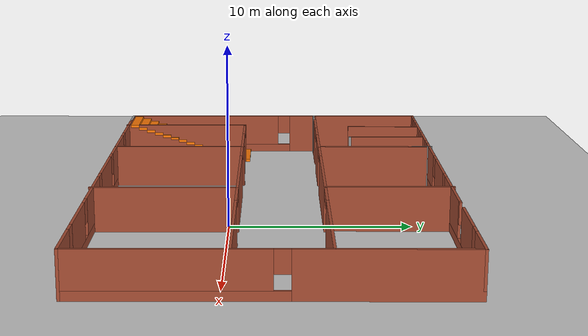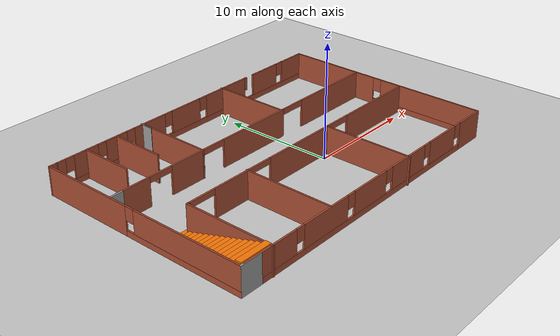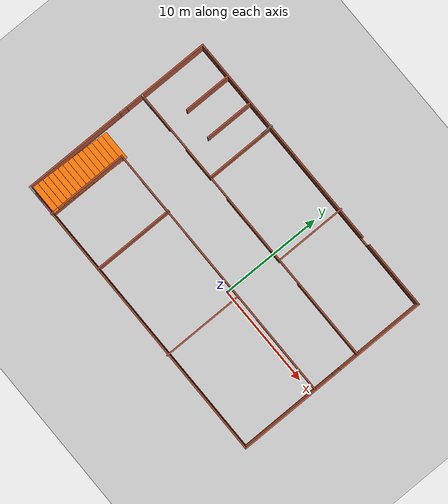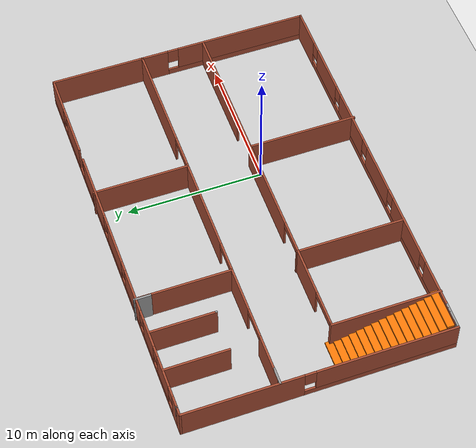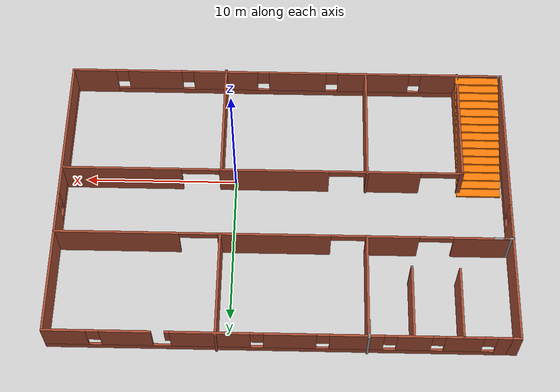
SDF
<sdf version="1.7">
 <world name="default">
  <light name="sun" type="directional">
   <pose>0 0 10 0 -0 0</pose>
   <diffuse>0.8 0.8 0.8 1</diffuse>
   <specular>0.2 0.2 0.2 1</specular>
   <attenuation>
    <range>1000</range>
    <constant>0.9</constant>
    <linear>0.01</linear>
    <quadratic>0.001</quadratic>
   </attenuation>
   <direction>-0.5 0.1 -0.9</direction>
   <spot><inner_angle>0</inner_angle><outer_angle>0</outer_angle><falloff>0</falloff></spot>
  </light>
  <model name="ground_plane">
   <static>1</static>
   <link name="link">
    <collision name="collision">
     <geometry><plane><normal>0 0 1</normal><size>100 100</size></plane></geometry>
     <surface>
      <contact><collide_bitmask>65535</collide_bitmask></contact>
      <friction><ode><mu>100</mu><mu2>50</mu2></ode></friction>
     </surface>
    </collision>
    <visual name="visual">
     <cast_shadows>0</cast_shadows>
     <geometry><plane><normal>0 0 1</normal><size>100 100</size></plane></geometry>
     <material>
      <script><uri>file://media/materials/scripts/gazebo.material</uri><name>Gazebo/Grey</name></script>
     </material>
    </visual>
   </link>
  </model>
  <gravity>0 0 -9.8</gravity>
  <magnetic_field>6e-06 2.3e-05 -4.2e-05</magnetic_field>
  <atmosphere type="adiabatic"/>
  <physics type="ode">
   <max_step_size>0.001</max_step_size>
   <real_time_factor>1</real_time_factor>
   <real_time_update_rate>1000</real_time_update_rate>
  </physics>
  <scene><ambient>0.4 0.4 0.4 1</ambient><background>0.7 0.7 0.7 1</background><shadows>1</shadows></scene>
  <spherical_coordinates>
   <surface_model>EARTH_WGS84</surface_model>
   <latitude_deg>0</latitude_deg>
   <longitude_deg>0</longitude_deg>
   <elevation>0</elevation>
   <heading_deg>0</heading_deg>
  </spherical_coordinates>
  <model name="zeal_world">
   <pose>-3.26497 2.3618 0 0 -0 0</pose>
   <link name="Stairs_0">
    <visual name="Stairs_0_Visual_0">
     <pose>-12.9383 -1.79915 0.083333 0 -0 0</pose>
     <geometry><box><size>2.91044 0.530513 0.166667</size></box></geometry>
     <material>
      <script><uri>file://media/materials/scripts/gazebo.material</uri><name>Gazebo/Grey</name></script>
      <ambient>0.996078 0.47451 0.0196078 1</ambient>
     </material>
     <meta><layer>0</layer></meta>
    </visual>
    <collision name="Stairs_0_Collision_0">
     <geometry><box><size>2.91044 0.530513 0.166667</size></box></geometry>
     <pose>-12.9383 -1.79915 0.083333 0 -0 0</pose>
    </collision>
    <visual name="Stairs_0_Visual_1">
     <pose>-12.9383 -2.32966 0.25 0 -0 0</pose>
     <geometry><box><size>2.91044 0.530513 0.166667</size></box></geometry>
     <material>
      <script><uri>file://media/materials/scripts/gazebo.material</uri><name>Gazebo/Grey</name></script>
      <ambient>0.996078 0.47451 0.0196078 1</ambient>
     </material>
     <meta><layer>0</layer></meta>
    </visual>
    <collision name="Stairs_0_Collision_1">
     <geometry><box><size>2.91044 0.530513 0.166667</size></box></geometry>
     <pose>-12.9383 -2.32966 0.25 0 -0 0</pose>
    </collision>
    <visual name="Stairs_0_Visual_2">
     <pose>-12.9383 -2.86017 0.416667 0 -0 0</pose>
     <geometry><box><size>2.91044 0.530513 0.166667</size></box></geometry>
     <material>
      <script><uri>file://media/materials/scripts/gazebo.material</uri><name>Gazebo/Grey</name></script>
      <ambient>0.996078 0.47451 0.0196078 1</ambient>
     </material>
     <meta><layer>0</layer></meta>
    </visual>
    <collision name="Stairs_0_Collision_2">
     <geometry><box><size>2.91044 0.530513 0.166667</size></box></geometry>
     <pose>-12.9383 -2.86017 0.416667 0 -0 0</pose>
    </collision>
    <visual name="Stairs_0_Visual_3">
     <pose>-12.9383 -3.39069 0.583333 0 -0 0</pose>
     <geometry><box><size>2.91044 0.530513 0.166667</size></box></geometry>
     <material>
      <script><uri>file://media/materials/scripts/gazebo.material</uri><name>Gazebo/Grey</name></script>
      <ambient>0.996078 0.47451 0.0196078 1</ambient>
     </material>
     <meta><layer>0</layer></meta>
    </visual>
    <collision name="Stairs_0_Collision_3">
     <geometry><box><size>2.91044 0.530513 0.166667</size></box></geometry>
     <pose>-12.9383 -3.39069 0.583333 0 -0 0</pose>
    </collision>
    <visual name="Stairs_0_Visual_4">
     <pose>-12.9383 -3.9212 0.75 0 -0 0</pose>
     <geometry><box><size>2.91044 0.530513 0.166667</size></box></geometry>
     <material>
      <script><uri>file://media/materials/scripts/gazebo.material</uri><name>Gazebo/Grey</name></script>
      <ambient>0.996078 0.47451 0.0196078 1</ambient>
     </material>
     <meta><layer>0</layer></meta>
    </visual>
    <collision name="Stairs_0_Collision_4">
     <geometry><box><size>2.91044 0.530513 0.166667</size></box></geometry>
     <pose>-12.9383 -3.9212 0.75 0 -0 0</pose>
    </collision>
    <visual name="Stairs_0_Visual_5">
     <pose>-12.9383 -4.45171 0.916667 0 -0 0</pose>
     <geometry><box><size>2.91044 0.530513 0.166667</size></box></geometry>
     <material>
      <script><uri>file://media/materials/scripts/gazebo.material</uri><name>Gazebo/Grey</name></script>
      <ambient>0.996078 0.47451 0.0196078 1</ambient>
     </material>
     <meta><layer>0</layer></meta>
    </visual>
    <collision name="Stairs_0_Collision_5">
     <geometry><box><size>2.91044 0.530513 0.166667</size></box></geometry>
     <pose>-12.9383 -4.45171 0.916667 0 -0 0</pose>
    </collision>
    <visual name="Stairs_0_Visual_6">
     <pose>-12.9383 -4.98222 1.08333 0 -0 0</pose>
     <geometry><box><size>2.91044 0.530513 0.166667</size></box></geometry>
     <material>
      <script><uri>file://media/materials/scripts/gazebo.material</uri><name>Gazebo/Grey</name></script>
      <ambient>0.996078 0.47451 0.0196078 1</ambient>
     </material>
     <meta><layer>0</layer></meta>
    </visual>
    <collision name="Stairs_0_Collision_6">
     <geometry><box><size>2.91044 0.530513 0.166667</size></box></geometry>
     <pose>-12.9383 -4.98222 1.08333 0 -0 0</pose>
    </collision>
    <visual name="Stairs_0_Visual_7">
     <pose>-12.9383 -5.51274 1.25 0 -0 0</pose>
     <geometry><box><size>2.91044 0.530513 0.166667</size></box></geometry>
     <material>
      <script><uri>file://media/materials/scripts/gazebo.material</uri><name>Gazebo/Grey</name></script>
      <ambient>0.996078 0.47451 0.0196078 1</ambient>
     </material>
     <meta><layer>0</layer></meta>
    </visual>
    <collision name="Stairs_0_Collision_7">
     <geometry><box><size>2.91044 0.530513 0.166667</size></box></geometry>
     <pose>-12.9383 -5.51274 1.25 0 -0 0</pose>
    </collision>
    <visual name="Stairs_0_Visual_8">
     <pose>-12.9383 -6.04325 1.41667 0 -0 0</pose>
     <geometry><box><size>2.91044 0.530513 0.166667</size></box></geometry>
     <material>
      <script><uri>file://media/materials/scripts/gazebo.material</uri><name>Gazebo/Grey</name></script>
      <ambient>0.996078 0.47451 0.0196078 1</ambient>
     </material>
     <meta><layer>0</layer></meta>
    </visual>
    <collision name="Stairs_0_Collision_8">
     <geometry><box><size>2.91044 0.530513 0.166667</size></box></geometry>
     <pose>-12.9383 -6.04325 1.41667 0 -0 0</pose>
    </collision>
    <visual name="Stairs_0_Visual_9">
     <pose>-12.9383 -6.57376 1.58333 0 -0 0</pose>
     <geometry><box><size>2.91044 0.530513 0.166667</size></box></geometry>
     <material>
      <script><uri>file://media/materials/scripts/gazebo.material</uri><name>Gazebo/Grey</name></script>
      <ambient>0.996078 0.47451 0.0196078 1</ambient>
     </material>
     <meta><layer>0</layer></meta>
    </visual>
    <collision name="Stairs_0_Collision_9">
     <geometry><box><size>2.91044 0.530513 0.166667</size></box></geometry>
     <pose>-12.9383 -6.57376 1.58333 0 -0 0</pose>
    </collision>
    <visual name="Stairs_0_Visual_10">
     <pose>-12.9383 -7.10428 1.75 0 -0 0</pose>
     <geometry><box><size>2.91044 0.530513 0.166667</size></box></geometry>
     <material>
      <script><uri>file://media/materials/scripts/gazebo.material</uri><name>Gazebo/Grey</name></script>
      <ambient>0.996078 0.47451 0.0196078 1</ambient>
     </material>
     <meta><layer>0</layer></meta>
    </visual>
    <collision name="Stairs_0_Collision_10">
     <geometry><box><size>2.91044 0.530513 0.166667</size></box></geometry>
     <pose>-12.9383 -7.10428 1.75 0 -0 0</pose>
    </collision>
    <visual name="Stairs_0_Visual_11">
     <pose>-12.9383 -7.63479 1.91667 0 -0 0</pose>
     <geometry><box><size>2.91044 0.530513 0.166667</size></box></geometry>
     <material>
      <script><uri>file://media/materials/scripts/gazebo.material</uri><name>Gazebo/Grey</name></script>
      <ambient>0.996078 0.47451 0.0196078 1</ambient>
     </material>
     <meta><layer>0</layer></meta>
    </visual>
    <collision name="Stairs_0_Collision_11">
     <geometry><box><size>2.91044 0.530513 0.166667</size></box></geometry>
     <pose>-12.9383 -7.63479 1.91667 0 -0 0</pose>
    </collision>
    <visual name="Stairs_0_Visual_12">
     <pose>-12.9383 -8.1653 2.08333 0 -0 0</pose>
     <geometry><box><size>2.91044 0.530513 0.166667</size></box></geometry>
     <material>
      <script><uri>file://media/materials/scripts/gazebo.material</uri><name>Gazebo/Grey</name></script>
      <ambient>0.996078 0.47451 0.0196078 1</ambient>
     </material>
     <meta><layer>0</layer></meta>
    </visual>
    <collision name="Stairs_0_Collision_12">
     <geometry><box><size>2.91044 0.530513 0.166667</size></box></geometry>
     <pose>-12.9383 -8.1653 2.08333 0 -0 0</pose>
    </collision>
    <visual name="Stairs_0_Visual_13">
     <pose>-12.9383 -8.69581 2.25 0 -0 0</pose>
     <geometry><box><size>2.91044 0.530513 0.166667</size></box></geometry>
     <material>
      <script><uri>file://media/materials/scripts/gazebo.material</uri><name>Gazebo/Grey</name></script>
      <ambient>0.996078 0.47451 0.0196078 1</ambient>
     </material>
     <meta><layer>0</layer></meta>
    </visual>
    <collision name="Stairs_0_Collision_13">
     <geometry><box><size>2.91044 0.530513 0.166667</size></box></geometry>
     <pose>-12.9383 -8.69581 2.25 0 -0 0</pose>
    </collision>
    <visual name="Stairs_0_Visual_14">
     <pose>-12.9383 -9.22633 2.41667 0 -0 0</pose>
     <geometry><box><size>2.91044 0.530513 0.166667</size></box></geometry>
     <material>
      <script><uri>file://media/materials/scripts/gazebo.material</uri><name>Gazebo/Grey</name></script>
      <ambient>0.996078 0.47451 0.0196078 1</ambient>
     </material>
     <meta><layer>0</layer></meta>
    </visual>
    <collision name="Stairs_0_Collision_14">
     <geometry><box><size>2.91044 0.530513 0.166667</size></box></geometry>
     <pose>-12.9383 -9.22633 2.41667 0 -0 0</pose>
    </collision>
   </link>
   <link name="Wall_13">
    <pose>0.3 9.68243 0 0 -0 0</pose>
    <visual name="Wall_13_Visual_0">
     <pose>-13.9256 0 1.25 0 -0 0</pose>
     <geometry><box><size>0.8988 0.15 2.5</size></box></geometry>
     <material>
      <script><uri>file://media/materials/scripts/gazebo.material</uri><name>Gazebo/Bricks</name></script>
      <ambient>1 1 1 1</ambient>
     </material>
     <meta><layer>0</layer></meta>
    </visual>
    <collision name="Wall_13_Collision_0">
     <geometry><box><size>0.8988 0.15 2.5</size></box></geometry>
     <pose>-13.9256 0 1.25 0 -0 0</pose>
    </collision>
    <visual name="Wall_13_Visual_1">
     <pose>0.4494 0 0.25 0 -0 0</pose>
     <geometry><box><size>27.8512 0.15 0.5</size></box></geometry>
     <material>
      <script><uri>file://media/materials/scripts/gazebo.material</uri><name>Gazebo/Bricks</name></script>
      <ambient>1 1 1 1</ambient>
     </material>
     <meta><layer>0</layer></meta>
    </visual>
    <collision name="Wall_13_Collision_1">
     <geometry><box><size>27.8512 0.15 0.5</size></box></geometry>
     <pose>0.4494 0 0.25 0 -0 0</pose>
    </collision>
    <visual name="Wall_13_Visual_2">
     <pose>-11.5072 0 1.5 0 -0 0</pose>
     <geometry><box><size>2.33792 0.15 2</size></box></geometry>
     <material>
      <script><uri>file://media/materials/scripts/gazebo.material</uri><name>Gazebo/Bricks</name></script>
      <ambient>1 1 1 1</ambient>
     </material>
     <meta><layer>0</layer></meta>
    </visual>
    <collision name="Wall_13_Collision_2">
     <geometry><box><size>2.33792 0.15 2</size></box></geometry>
     <pose>-11.5072 0 1.5 0 -0 0</pose>
    </collision>
    <visual name="Wall_13_Visual_3">
     <pose>-8.46161 0 1.5 0 -0 0</pose>
     <geometry><box><size>2.15334 0.15 2</size></box></geometry>
     <material>
      <script><uri>file://media/materials/scripts/gazebo.material</uri><name>Gazebo/Bricks</name></script>
      <ambient>1 1 1 1</ambient>
     </material>
     <meta><layer>0</layer></meta>
    </visual>
    <collision name="Wall_13_Collision_3">
     <geometry><box><size>2.15334 0.15 2</size></box></geometry>
     <pose>-8.46161 0 1.5 0 -0 0</pose>
    </collision>
    <visual name="Wall_13_Visual_4">
     <pose>-4.92376 0 1.5 0 -0 0</pose>
     <geometry><box><size>3.32237 0.15 2</size></box></geometry>
     <material>
      <script><uri>file://media/materials/scripts/gazebo.material</uri><name>Gazebo/Bricks</name></script>
      <ambient>1 1 1 1</ambient>
     </material>
     <meta><layer>0</layer></meta>
    </visual>
    <collision name="Wall_13_Collision_4">
     <geometry><box><size>3.32237 0.15 2</size></box></geometry>
     <pose>-4.92376 0 1.5 0 -0 0</pose>
    </collision>
    <visual name="Wall_13_Visual_5">
     <pose>-0.832152 0 1.5 0 -0 0</pose>
     <geometry><box><size>3.26084 0.15 2</size></box></geometry>
     <material>
      <script><uri>file://media/materials/scripts/gazebo.material</uri><name>Gazebo/Bricks</name></script>
      <ambient>1 1 1 1</ambient>
     </material>
     <meta><layer>0</layer></meta>
    </visual>
    <collision name="Wall_13_Collision_5">
     <geometry><box><size>3.26084 0.15 2</size></box></geometry>
     <pose>-0.832152 0 1.5 0 -0 0</pose>
    </collision>
    <visual name="Wall_13_Visual_6">
     <pose>4.05931 0 1.5 0 -0 0</pose>
     <geometry><box><size>4.92209 0.15 2</size></box></geometry>
     <material>
      <script><uri>file://media/materials/scripts/gazebo.material</uri><name>Gazebo/Bricks</name></script>
      <ambient>1 1 1 1</ambient>
     </material>
     <meta><layer>0</layer></meta>
    </visual>
    <collision name="Wall_13_Collision_6">
     <geometry><box><size>4.92209 0.15 2</size></box></geometry>
     <pose>4.05931 0 1.5 0 -0 0</pose>
    </collision>
    <visual name="Wall_13_Visual_7">
     <pose>9.22766 0 1.5 0 -0 0</pose>
     <geometry><box><size>3.19931 0.15 2</size></box></geometry>
     <material>
      <script><uri>file://media/materials/scripts/gazebo.material</uri><name>Gazebo/Bricks</name></script>
      <ambient>1 1 1 1</ambient>
     </material>
     <meta><layer>0</layer></meta>
    </visual>
    <collision name="Wall_13_Collision_7">
     <geometry><box><size>3.19931 0.15 2</size></box></geometry>
     <pose>9.22766 0 1.5 0 -0 0</pose>
    </collision>
    <visual name="Wall_13_Visual_8">
     <pose>13.0012 0 1.5 0 -0 0</pose>
     <geometry><box><size>2.74769 0.15 2</size></box></geometry>
     <material>
      <script><uri>file://media/materials/scripts/gazebo.material</uri><name>Gazebo/Bricks</name></script>
      <ambient>1 1 1 1</ambient>
     </material>
     <meta><layer>0</layer></meta>
    </visual>
    <collision name="Wall_13_Collision_8">
     <geometry><box><size>2.74769 0.15 2</size></box></geometry>
     <pose>13.0012 0 1.5 0 -0 0</pose>
    </collision>
    <visual name="Wall_13_Visual_9">
     <pose>-13.0762 0 1.9 0 -0 0</pose>
     <geometry><box><size>0.8 0.15 1.2</size></box></geometry>
     <material>
      <script><uri>file://media/materials/scripts/gazebo.material</uri><name>Gazebo/Bricks</name></script>
      <ambient>1 1 1 1</ambient>
     </material>
     <meta><layer>0</layer></meta>
    </visual>
    <collision name="Wall_13_Collision_9">
     <geometry><box><size>0.8 0.15 1.2</size></box></geometry>
     <pose>-13.0762 0 1.9 0 -0 0</pose>
    </collision>
    <visual name="Wall_13_Visual_10">
     <pose>-9.93828 0 1.9 0 -0 0</pose>
     <geometry><box><size>0.8 0.15 1.2</size></box></geometry>
     <material>
      <script><uri>file://media/materials/scripts/gazebo.material</uri><name>Gazebo/Bricks</name></script>
      <ambient>1 1 1 1</ambient>
     </material>
     <meta><layer>0</layer></meta>
    </visual>
    <collision name="Wall_13_Collision_10">
     <geometry><box><size>0.8 0.15 1.2</size></box></geometry>
     <pose>-9.93828 0 1.9 0 -0 0</pose>
    </collision>
    <visual name="Wall_13_Visual_11">
     <pose>-6.98494 0 1.9 0 -0 0</pose>
     <geometry><box><size>0.8 0.15 1.2</size></box></geometry>
     <material>
      <script><uri>file://media/materials/scripts/gazebo.material</uri><name>Gazebo/Bricks</name></script>
      <ambient>1 1 1 1</ambient>
     </material>
     <meta><layer>0</layer></meta>
    </visual>
    <collision name="Wall_13_Collision_11">
     <geometry><box><size>0.8 0.15 1.2</size></box></geometry>
     <pose>-6.98494 0 1.9 0 -0 0</pose>
    </collision>
    <visual name="Wall_13_Visual_12">
     <pose>-2.86257 0 1.9 0 -0 0</pose>
     <geometry><box><size>0.8 0.15 1.2</size></box></geometry>
     <material>
      <script><uri>file://media/materials/scripts/gazebo.material</uri><name>Gazebo/Bricks</name></script>
      <ambient>1 1 1 1</ambient>
     </material>
     <meta><layer>0</layer></meta>
    </visual>
    <collision name="Wall_13_Collision_12">
     <geometry><box><size>0.8 0.15 1.2</size></box></geometry>
     <pose>-2.86257 0 1.9 0 -0 0</pose>
    </collision>
    <visual name="Wall_13_Visual_13">
     <pose>1.19827 0 1.9 0 -0 0</pose>
     <geometry><box><size>0.8 0.15 1.2</size></box></geometry>
     <material>
      <script><uri>file://media/materials/scripts/gazebo.material</uri><name>Gazebo/Bricks</name></script>
      <ambient>1 1 1 1</ambient>
     </material>
     <meta><layer>0</layer></meta>
    </visual>
    <collision name="Wall_13_Collision_13">
     <geometry><box><size>0.8 0.15 1.2</size></box></geometry>
     <pose>1.19827 0 1.9 0 -0 0</pose>
    </collision>
    <visual name="Wall_13_Visual_14">
     <pose>6.67418 0 1.9 0 -0 0</pose>
     <geometry><box><size>0.30764 0.15 1.2</size></box></geometry>
     <material>
      <script><uri>file://media/materials/scripts/gazebo.material</uri><name>Gazebo/Bricks</name></script>
      <ambient>1 1 1 1</ambient>
     </material>
     <meta><layer>0</layer></meta>
    </visual>
    <collision name="Wall_13_Collision_14">
     <geometry><box><size>0.30764 0.15 1.2</size></box></geometry>
     <pose>6.67418 0 1.9 0 -0 0</pose>
    </collision>
    <visual name="Wall_13_Visual_15">
     <pose>11.2273 0 1.9 0 -0 0</pose>
     <geometry><box><size>0.8 0.15 1.2</size></box></geometry>
     <material>
      <script><uri>file://media/materials/scripts/gazebo.material</uri><name>Gazebo/Bricks</name></script>
      <ambient>1 1 1 1</ambient>
     </material>
     <meta><layer>0</layer></meta>
    </visual>
    <collision name="Wall_13_Collision_15">
     <geometry><box><size>0.8 0.15 1.2</size></box></geometry>
     <pose>11.2273 0 1.9 0 -0 0</pose>
    </collision>
   </link>
   <link name="Wall_14">
    <pose>14.6 0.007426 0 0 -0 -1.5708</pose>
    <visual name="Wall_14_Visual_0">
     <pose>-5.32751 0 1.25 0 -0 0</pose>
     <geometry><box><size>8.84498 0.15 2.5</size></box></geometry>
     <material>
      <script><uri>file://media/materials/scripts/gazebo.material</uri><name>Gazebo/Bricks</name></script>
      <ambient>1 1 1 1</ambient>
     </material>
     <meta><layer>0</layer></meta>
    </visual>
    <collision name="Wall_14_Collision_0">
     <geometry><box><size>8.84498 0.15 2.5</size></box></geometry>
     <pose>-5.32751 0 1.25 0 -0 0</pose>
    </collision>
    <visual name="Wall_14_Visual_1">
     <pose>4.42249 0 0.25 0 -0 0</pose>
     <geometry><box><size>10.655 0.15 0.5</size></box></geometry>
     <material>
      <script><uri>file://media/materials/scripts/gazebo.material</uri><name>Gazebo/Bricks</name></script>
      <ambient>1 1 1 1</ambient>
     </material>
     <meta><layer>0</layer></meta>
    </visual>
    <collision name="Wall_14_Collision_1">
     <geometry><box><size>10.655 0.15 0.5</size></box></geometry>
     <pose>4.42249 0 0.25 0 -0 0</pose>
    </collision>
    <visual name="Wall_14_Visual_2">
     <pose>4.82249 0 1.5 0 -0 0</pose>
     <geometry><box><size>9.85502 0.15 2</size></box></geometry>
     <material>
      <script><uri>file://media/materials/scripts/gazebo.material</uri><name>Gazebo/Bricks</name></script>
      <ambient>1 1 1 1</ambient>
     </material>
     <meta><layer>0</layer></meta>
    </visual>
    <collision name="Wall_14_Collision_2">
     <geometry><box><size>9.85502 0.15 2</size></box></geometry>
     <pose>4.82249 0 1.5 0 -0 0</pose>
    </collision>
    <visual name="Wall_14_Visual_3">
     <pose>-0.505018 0 1.9 0 -0 0</pose>
     <geometry><box><size>0.8 0.15 1.2</size></box></geometry>
     <material>
      <script><uri>file://media/materials/scripts/gazebo.material</uri><name>Gazebo/Bricks</name></script>
      <ambient>1 1 1 1</ambient>
     </material>
     <meta><layer>0</layer></meta>
    </visual>
    <collision name="Wall_14_Collision_3">
     <geometry><box><size>0.8 0.15 1.2</size></box></geometry>
     <pose>-0.505018 0 1.9 0 -0 0</pose>
    </collision>
   </link>
   <link name="Wall_15">
    <pose>0.175 -9.66757 0 0 -0 3.14159</pose>
    <visual name="Wall_15_Visual_0">
     <pose>-13.0075 0 1.25 0 -0 0</pose>
     <geometry><box><size>2.98497 0.15 2.5</size></box></geometry>
     <material>
      <script><uri>file://media/materials/scripts/gazebo.material</uri><name>Gazebo/Bricks</name></script>
      <ambient>1 1 1 1</ambient>
     </material>
     <meta><layer>0</layer></meta>
    </visual>
    <collision name="Wall_15_Collision_0">
     <geometry><box><size>2.98497 0.15 2.5</size></box></geometry>
     <pose>-13.0075 0 1.25 0 -0 0</pose>
    </collision>
    <visual name="Wall_15_Visual_1">
     <pose>1.49249 0 0.25 0 -0 0</pose>
     <geometry><box><size>26.015 0.15 0.5</size></box></geometry>
     <material>
      <script><uri>file://media/materials/scripts/gazebo.material</uri><name>Gazebo/Bricks</name></script>
      <ambient>1 1 1 1</ambient>
     </material>
     <meta><layer>0</layer></meta>
    </visual>
    <collision name="Wall_15_Collision_1">
     <geometry><box><size>26.015 0.15 0.5</size></box></geometry>
     <pose>1.49249 0 0.25 0 -0 0</pose>
    </collision>
    <visual name="Wall_15_Visual_2">
     <pose>-8.86792 0 1.5 0 -0 0</pose>
     <geometry><box><size>3.69421 0.15 2</size></box></geometry>
     <material>
      <script><uri>file://media/materials/scripts/gazebo.material</uri><name>Gazebo/Bricks</name></script>
      <ambient>1 1 1 1</ambient>
     </material>
     <meta><layer>0</layer></meta>
    </visual>
    <collision name="Wall_15_Collision_2">
     <geometry><box><size>3.69421 0.15 2</size></box></geometry>
     <pose>-8.86792 0 1.5 0 -0 0</pose>
    </collision>
    <visual name="Wall_15_Visual_3">
     <pose>-4.02595 0 1.5 0 -0 0</pose>
     <geometry><box><size>4.38974 0.15 2</size></box></geometry>
     <material>
      <script><uri>file://media/materials/scripts/gazebo.material</uri><name>Gazebo/Bricks</name></script>
      <ambient>1 1 1 1</ambient>
     </material>
     <meta><layer>0</layer></meta>
    </visual>
    <collision name="Wall_15_Collision_3">
     <geometry><box><size>4.38974 0.15 2</size></box></geometry>
     <pose>-4.02595 0 1.5 0 -0 0</pose>
    </collision>
    <visual name="Wall_15_Visual_4">
     <pose>0.923036 0 1.5 0 -0 0</pose>
     <geometry><box><size>3.90822 0.15 2</size></box></geometry>
     <material>
      <script><uri>file://media/materials/scripts/gazebo.material</uri><name>Gazebo/Bricks</name></script>
      <ambient>1 1 1 1</ambient>
     </material>
     <meta><layer>0</layer></meta>
    </visual>
    <collision name="Wall_15_Collision_4">
     <geometry><box><size>3.90822 0.15 2</size></box></geometry>
     <pose>0.923036 0 1.5 0 -0 0</pose>
    </collision>
    <visual name="Wall_15_Visual_5">
     <pose>6.11278 0 1.5 0 -0 0</pose>
     <geometry><box><size>4.87127 0.15 2</size></box></geometry>
     <material>
      <script><uri>file://media/materials/scripts/gazebo.material</uri><name>Gazebo/Bricks</name></script>
      <ambient>1 1 1 1</ambient>
     </material>
     <meta><layer>0</layer></meta>
    </visual>
    <collision name="Wall_15_Collision_5">
     <geometry><box><size>4.87127 0.15 2</size></box></geometry>
     <pose>6.11278 0 1.5 0 -0 0</pose>
    </collision>
    <visual name="Wall_15_Visual_6">
     <pose>11.9242 0 1.5 0 -0 0</pose>
     <geometry><box><size>5.15159 0.15 2</size></box></geometry>
     <material>
      <script><uri>file://media/materials/scripts/gazebo.material</uri><name>Gazebo/Bricks</name></script>
      <ambient>1 1 1 1</ambient>
     </material>
     <meta><layer>0</layer></meta>
    </visual>
    <collision name="Wall_15_Collision_6">
     <geometry><box><size>5.15159 0.15 2</size></box></geometry>
     <pose>11.9242 0 1.5 0 -0 0</pose>
    </collision>
    <visual name="Wall_15_Visual_7">
     <pose>-11.115 0 1.9 0 -0 0</pose>
     <geometry><box><size>0.8 0.15 1.2</size></box></geometry>
     <material>
      <script><uri>file://media/materials/scripts/gazebo.material</uri><name>Gazebo/Bricks</name></script>
      <ambient>1 1 1 1</ambient>
     </material>
     <meta><layer>0</layer></meta>
    </visual>
    <collision name="Wall_15_Collision_7">
     <geometry><box><size>0.8 0.15 1.2</size></box></geometry>
     <pose>-11.115 0 1.9 0 -0 0</pose>
    </collision>
    <visual name="Wall_15_Visual_8">
     <pose>-6.62082 0 1.9 0 -0 0</pose>
     <geometry><box><size>0.8 0.15 1.2</size></box></geometry>
     <material>
      <script><uri>file://media/materials/scripts/gazebo.material</uri><name>Gazebo/Bricks</name></script>
      <ambient>1 1 1 1</ambient>
     </material>
     <meta><layer>0</layer></meta>
    </visual>
    <collision name="Wall_15_Collision_8">
     <geometry><box><size>0.8 0.15 1.2</size></box></geometry>
     <pose>-6.62082 0 1.9 0 -0 0</pose>
    </collision>
    <visual name="Wall_15_Visual_9">
     <pose>-1.43107 0 1.9 0 -0 0</pose>
     <geometry><box><size>0.8 0.15 1.2</size></box></geometry>
     <material>
      <script><uri>file://media/materials/scripts/gazebo.material</uri><name>Gazebo/Bricks</name></script>
      <ambient>1 1 1 1</ambient>
     </material>
     <meta><layer>0</layer></meta>
    </visual>
    <collision name="Wall_15_Collision_9">
     <geometry><box><size>0.8 0.15 1.2</size></box></geometry>
     <pose>-1.43107 0 1.9 0 -0 0</pose>
    </collision>
    <visual name="Wall_15_Visual_10">
     <pose>3.27715 0 1.9 0 -0 0</pose>
     <geometry><box><size>0.8 0.15 1.2</size></box></geometry>
     <material>
      <script><uri>file://media/materials/scripts/gazebo.material</uri><name>Gazebo/Bricks</name></script>
      <ambient>1 1 1 1</ambient>
     </material>
     <meta><layer>0</layer></meta>
    </visual>
    <collision name="Wall_15_Collision_10">
     <geometry><box><size>0.8 0.15 1.2</size></box></geometry>
     <pose>3.27715 0 1.9 0 -0 0</pose>
    </collision>
    <visual name="Wall_15_Visual_11">
     <pose>8.94841 0 1.9 0 -0 0</pose>
     <geometry><box><size>0.8 0.15 1.2</size></box></geometry>
     <material>
      <script><uri>file://media/materials/scripts/gazebo.material</uri><name>Gazebo/Bricks</name></script>
      <ambient>1 1 1 1</ambient>
     </material>
     <meta><layer>0</layer></meta>
    </visual>
    <collision name="Wall_15_Collision_11">
     <geometry><box><size>0.8 0.15 1.2</size></box></geometry>
     <pose>8.94841 0 1.9 0 -0 0</pose>
    </collision>
   </link>
   <link name="Wall_17">
    <collision name="Wall_17_Collision">
     <geometry><box><size>0.15 0.15 2.5</size></box></geometry>
     <pose>0 0 1.25 0 -0 0</pose>
    </collision>
    <visual name="Wall_17_Visual">
     <pose>0 0 1.25 0 -0 0</pose>
     <geometry><box><size>0.15 0.15 2.5</size></box></geometry>
     <material>
      <script><uri>file://media/materials/scripts/gazebo.material</uri><name>Gazebo/Grey</name></script>
      <ambient>1 1 1 1</ambient>
     </material>
     <meta><layer>0</layer></meta>
    </visual>
    <pose>-14 9.68243 0 0 -0 0</pose>
   </link>
   <link name="Wall_19">
    <collision name="Wall_19_Collision">
     <geometry><box><size>0.75 0.15 2.5</size></box></geometry>
     <pose>0 0 1.25 0 -0 0</pose>
    </collision>
    <visual name="Wall_19_Visual">
     <pose>0 0 1.25 0 -0 0</pose>
     <geometry><box><size>0.75 0.15 2.5</size></box></geometry>
     <material>
      <script><uri>file://media/materials/scripts/gazebo.material</uri><name>Gazebo/Bricks</name></script>
      <ambient>1 1 1 1</ambient>
     </material>
     <meta><layer>0</layer></meta>
    </visual>
    <pose>-14.3 9.68243 0 0 -0 3.14159</pose>
   </link>
   <link name="Wall_20">
    <pose>-14.6 0.007426 0 0 -0 -1.5708</pose>
    <visual name="Wall_20_Visual_0">
     <pose>-5.45056 0 1.25 0 -0 0</pose>
     <geometry><box><size>8.59887 0.15 2.5</size></box></geometry>
     <material>
      <script><uri>file://media/materials/scripts/gazebo.material</uri><name>Gazebo/Bricks</name></script>
      <ambient>1 1 1 1</ambient>
     </material>
     <meta><layer>0</layer></meta>
    </visual>
    <collision name="Wall_20_Collision_0">
     <geometry><box><size>8.59887 0.15 2.5</size></box></geometry>
     <pose>-5.45056 0 1.25 0 -0 0</pose>
    </collision>
    <visual name="Wall_20_Visual_1">
     <pose>4.29944 0 0.25 0 -0 0</pose>
     <geometry><box><size>10.9011 0.15 0.5</size></box></geometry>
     <material>
      <script><uri>file://media/materials/scripts/gazebo.material</uri><name>Gazebo/Bricks</name></script>
      <ambient>1 1 1 1</ambient>
     </material>
     <meta><layer>0</layer></meta>
    </visual>
    <collision name="Wall_20_Collision_1">
     <geometry><box><size>10.9011 0.15 0.5</size></box></geometry>
     <pose>4.29944 0 0.25 0 -0 0</pose>
    </collision>
    <visual name="Wall_20_Visual_2">
     <pose>4.69944 0 1.5 0 -0 0</pose>
     <geometry><box><size>10.1011 0.15 2</size></box></geometry>
     <material>
      <script><uri>file://media/materials/scripts/gazebo.material</uri><name>Gazebo/Bricks</name></script>
      <ambient>1 1 1 1</ambient>
     </material>
     <meta><layer>0</layer></meta>
    </visual>
    <collision name="Wall_20_Collision_2">
     <geometry><box><size>10.1011 0.15 2</size></box></geometry>
     <pose>4.69944 0 1.5 0 -0 0</pose>
    </collision>
    <visual name="Wall_20_Visual_3">
     <pose>-0.751129 0 1.9 0 -0 0</pose>
     <geometry><box><size>0.8 0.15 1.2</size></box></geometry>
     <material>
      <script><uri>file://media/materials/scripts/gazebo.material</uri><name>Gazebo/Bricks</name></script>
      <ambient>1 1 1 1</ambient>
     </material>
     <meta><layer>0</layer></meta>
    </visual>
    <collision name="Wall_20_Collision_3">
     <geometry><box><size>0.8 0.15 1.2</size></box></geometry>
     <pose>-0.751129 0 1.9 0 -0 0</pose>
    </collision>
   </link>
   <link name="Wall_21">
    <collision name="Wall_21_Collision">
     <geometry><box><size>2 0.15 2.5</size></box></geometry>
     <pose>0 0 1.25 0 -0 0</pose>
    </collision>
    <visual name="Wall_21_Visual">
     <pose>0 0 1.25 0 -0 0</pose>
     <geometry><box><size>2 0.15 2.5</size></box></geometry>
     <material>
      <script><uri>file://media/materials/scripts/gazebo.material</uri><name>Gazebo/Grey</name></script>
      <ambient>1 1 1 1</ambient>
     </material>
     <meta><layer>0</layer></meta>
    </visual>
    <pose>-13.675 -9.66757 0 0 -0 0</pose>
   </link>
   <link name="Wall_23">
    <pose>0.125863 2.87197 0 0 -0 3.14159</pose>
    <visual name="Wall_23_Visual_0">
     <pose>-10.5034 0 1.25 0 -0 0</pose>
     <geometry><box><size>7.99314 0.15 2.5</size></box></geometry>
     <material>
      <script><uri>file://media/materials/scripts/gazebo.material</uri><name>Gazebo/Bricks</name></script>
      <ambient>1 1 1 1</ambient>
     </material>
     <meta><layer>0</layer></meta>
    </visual>
    <collision name="Wall_23_Collision_0">
     <geometry><box><size>7.99314 0.15 2.5</size></box></geometry>
     <pose>-10.5034 0 1.25 0 -0 0</pose>
    </collision>
    <visual name="Wall_23_Visual_1">
     <pose>-0.453763 0 1.25 0 -0 0</pose>
     <geometry><box><size>7.23157 0.15 2.5</size></box></geometry>
     <material>
      <script><uri>file://media/materials/scripts/gazebo.material</uri><name>Gazebo/Bricks</name></script>
      <ambient>1 1 1 1</ambient>
     </material>
     <meta><layer>0</layer></meta>
    </visual>
    <collision name="Wall_23_Collision_1">
     <geometry><box><size>7.23157 0.15 2.5</size></box></geometry>
     <pose>-0.453763 0 1.25 0 -0 0</pose>
    </collision>
    <visual name="Wall_23_Visual_2">
     <pose>7.0585 0 1.25 0 -0 0</pose>
     <geometry><box><size>3.40379 0.15 2.5</size></box></geometry>
     <material>
      <script><uri>file://media/materials/scripts/gazebo.material</uri><name>Gazebo/Bricks</name></script>
      <ambient>1 1 1 1</ambient>
     </material>
     <meta><layer>0</layer></meta>
    </visual>
    <collision name="Wall_23_Collision_2">
     <geometry><box><size>3.40379 0.15 2.5</size></box></geometry>
     <pose>7.0585 0 1.25 0 -0 0</pose>
    </collision>
    <visual name="Wall_23_Visual_3">
     <pose>12.7262 0 1.25 0 -0 0</pose>
     <geometry><box><size>3.54752 0.15 2.5</size></box></geometry>
     <material>
      <script><uri>file://media/materials/scripts/gazebo.material</uri><name>Gazebo/Bricks</name></script>
      <ambient>1 1 1 1</ambient>
     </material>
     <meta><layer>0</layer></meta>
    </visual>
    <collision name="Wall_23_Collision_3">
     <geometry><box><size>3.54752 0.15 2.5</size></box></geometry>
     <pose>12.7262 0 1.25 0 -0 0</pose>
    </collision>
    <visual name="Wall_23_Visual_4">
     <pose>-5.2882 0 2.25 0 -0 0</pose>
     <geometry><box><size>2.43731 0.15 0.5</size></box></geometry>
     <material>
      <script><uri>file://media/materials/scripts/gazebo.material</uri><name>Gazebo/Bricks</name></script>
      <ambient>1 1 1 1</ambient>
     </material>
     <meta><layer>0</layer></meta>
    </visual>
    <collision name="Wall_23_Collision_4">
     <geometry><box><size>2.43731 0.15 0.5</size></box></geometry>
     <pose>-5.2882 0 2.25 0 -0 0</pose>
    </collision>
    <visual name="Wall_23_Visual_5">
     <pose>4.25931 0 2.25 0 -0 0</pose>
     <geometry><box><size>2.19458 0.15 0.5</size></box></geometry>
     <material>
      <script><uri>file://media/materials/scripts/gazebo.material</uri><name>Gazebo/Bricks</name></script>
      <ambient>1 1 1 1</ambient>
     </material>
     <meta><layer>0</layer></meta>
    </visual>
    <collision name="Wall_23_Collision_5">
     <geometry><box><size>2.19458 0.15 0.5</size></box></geometry>
     <pose>4.25931 0 2.25 0 -0 0</pose>
    </collision>
    <visual name="Wall_23_Visual_6">
     <pose>9.85643 0 2.25 0 -0 0</pose>
     <geometry><box><size>2.19209 0.15 0.5</size></box></geometry>
     <material>
      <script><uri>file://media/materials/scripts/gazebo.material</uri><name>Gazebo/Bricks</name></script>
      <ambient>1 1 1 1</ambient>
     </material>
     <meta><layer>0</layer></meta>
    </visual>
    <collision name="Wall_23_Collision_6">
     <geometry><box><size>2.19209 0.15 0.5</size></box></geometry>
     <pose>9.85643 0 2.25 0 -0 0</pose>
    </collision>
   </link>
   <link name="Wall_25">
    <pose>1.43011 -1.86875 0 0 -0 3.14159</pose>
    <visual name="Wall_25_Visual_0">
     <pose>-9.21438 0 1.25 0 -0 0</pose>
     <geometry><box><size>7.82124 0.15 2.5</size></box></geometry>
     <material>
      <script><uri>file://media/materials/scripts/gazebo.material</uri><name>Gazebo/Bricks</name></script>
      <ambient>1 1 1 1</ambient>
     </material>
     <meta><layer>0</layer></meta>
    </visual>
    <collision name="Wall_25_Collision_0">
     <geometry><box><size>7.82124 0.15 2.5</size></box></geometry>
     <pose>-9.21438 0 1.25 0 -0 0</pose>
    </collision>
    <visual name="Wall_25_Visual_1">
     <pose>0.739227 0 1.25 0 -0 0</pose>
     <geometry><box><size>7.21134 0.15 2.5</size></box></geometry>
     <material>
      <script><uri>file://media/materials/scripts/gazebo.material</uri><name>Gazebo/Bricks</name></script>
      <ambient>1 1 1 1</ambient>
     </material>
     <meta><layer>0</layer></meta>
    </visual>
    <collision name="Wall_25_Collision_1">
     <geometry><box><size>7.21134 0.15 2.5</size></box></geometry>
     <pose>0.739227 0 1.25 0 -0 0</pose>
    </collision>
    <visual name="Wall_25_Visual_2">
     <pose>8.54331 0 1.25 0 -0 0</pose>
     <geometry><box><size>3.60311 0.15 2.5</size></box></geometry>
     <material>
      <script><uri>file://media/materials/scripts/gazebo.material</uri><name>Gazebo/Bricks</name></script>
      <ambient>1 1 1 1</ambient>
     </material>
     <meta><layer>0</layer></meta>
    </visual>
    <collision name="Wall_25_Collision_2">
     <geometry><box><size>3.60311 0.15 2.5</size></box></geometry>
     <pose>8.54331 0 1.25 0 -0 0</pose>
    </collision>
    <visual name="Wall_25_Visual_3">
     <pose>12.9877 0 1.25 0 -0 0</pose>
     <geometry><box><size>0.274543 0.15 2.5</size></box></geometry>
     <material>
      <script><uri>file://media/materials/scripts/gazebo.material</uri><name>Gazebo/Bricks</name></script>
      <ambient>1 1 1 1</ambient>
     </material>
     <meta><layer>0</layer></meta>
    </visual>
    <collision name="Wall_25_Collision_3">
     <geometry><box><size>0.274543 0.15 2.5</size></box></geometry>
     <pose>12.9877 0 1.25 0 -0 0</pose>
    </collision>
    <visual name="Wall_25_Visual_4">
     <pose>-4.0851 0 2.25 0 -0 0</pose>
     <geometry><box><size>2.43731 0.15 0.5</size></box></geometry>
     <material>
      <script><uri>file://media/materials/scripts/gazebo.material</uri><name>Gazebo/Bricks</name></script>
      <ambient>1 1 1 1</ambient>
     </material>
     <meta><layer>0</layer></meta>
    </visual>
    <collision name="Wall_25_Collision_4">
     <geometry><box><size>2.43731 0.15 0.5</size></box></geometry>
     <pose>-4.0851 0 2.25 0 -0 0</pose>
    </collision>
    <visual name="Wall_25_Visual_5">
     <pose>5.54333 0 2.25 0 -0 0</pose>
     <geometry><box><size>2.39686 0.15 0.5</size></box></geometry>
     <material>
      <script><uri>file://media/materials/scripts/gazebo.material</uri><name>Gazebo/Bricks</name></script>
      <ambient>1 1 1 1</ambient>
     </material>
     <meta><layer>0</layer></meta>
    </visual>
    <collision name="Wall_25_Collision_5">
     <geometry><box><size>2.39686 0.15 0.5</size></box></geometry>
     <pose>5.54333 0 2.25 0 -0 0</pose>
    </collision>
    <visual name="Wall_25_Visual_6">
     <pose>11.5977 0 2.25 0 -0 0</pose>
     <geometry><box><size>2.5056 0.15 0.5</size></box></geometry>
     <material>
      <script><uri>file://media/materials/scripts/gazebo.material</uri><name>Gazebo/Bricks</name></script>
      <ambient>1 1 1 1</ambient>
     </material>
     <meta><layer>0</layer></meta>
    </visual>
    <collision name="Wall_25_Collision_6">
     <geometry><box><size>2.5056 0.15 0.5</size></box></geometry>
     <pose>11.5977 0 2.25 0 -0 0</pose>
    </collision>
   </link>
   <link name="Wall_27">
    <collision name="Wall_27_Collision">
     <geometry><box><size>8 0.15 2.5</size></box></geometry>
     <pose>0 0 1.25 0 -0 0</pose>
    </collision>
    <visual name="Wall_27_Visual">
     <pose>0 0 1.25 0 -0 0</pose>
     <geometry><box><size>8 0.15 2.5</size></box></geometry>
     <material>
      <script><uri>file://media/materials/scripts/gazebo.material</uri><name>Gazebo/Bricks</name></script>
      <ambient>1 1 1 1</ambient>
     </material>
     <meta><layer>0</layer></meta>
    </visual>
    <pose>-11.6199 -5.79375 0 0 -0 -1.5708</pose>
   </link>
   <link name="Wall_29">
    <collision name="Wall_29_Collision">
     <geometry><box><size>1.25 0.15 2.5</size></box></geometry>
     <pose>0 0 1.25 0 -0 0</pose>
    </collision>
    <visual name="Wall_29_Visual">
     <pose>0 0 1.25 0 -0 0</pose>
     <geometry><box><size>1.25 0.15 2.5</size></box></geometry>
     <material>
      <script><uri>file://media/materials/scripts/gazebo.material</uri><name>Gazebo/Grey</name></script>
      <ambient>1 1 1 1</ambient>
     </material>
     <meta><layer>0</layer></meta>
    </visual>
    <pose>-14.0111 2.85438 0 0 -0 0</pose>
   </link>
   <link name="Wall_31">
    <collision name="Wall_31_Collision">
     <geometry><box><size>8 0.15 2.5</size></box></geometry>
     <pose>0 0 1.25 0 -0 0</pose>
    </collision>
    <visual name="Wall_31_Visual">
     <pose>0 0 1.25 0 -0 0</pose>
     <geometry><box><size>8 0.15 2.5</size></box></geometry>
     <material>
      <script><uri>file://media/materials/scripts/gazebo.material</uri><name>Gazebo/Bricks</name></script>
      <ambient>1 1 1 1</ambient>
     </material>
     <meta><layer>0</layer></meta>
    </visual>
    <pose>-5.39756 -5.72299 0 0 -0 -1.5708</pose>
   </link>
   <link name="Wall_33">
    <collision name="Wall_33_Collision">
     <geometry><box><size>8 0.15 2.5</size></box></geometry>
     <pose>0 0 1.25 0 -0 0</pose>
    </collision>
    <visual name="Wall_33_Visual">
     <pose>0 0 1.25 0 -0 0</pose>
     <geometry><box><size>8 0.15 2.5</size></box></geometry>
     <material>
      <script><uri>file://media/materials/scripts/gazebo.material</uri><name>Gazebo/Bricks</name></script>
      <ambient>1 1 1 1</ambient>
     </material>
     <meta><layer>0</layer></meta>
    </visual>
    <pose>4.15464 -5.86451 0 0 -0 -1.5708</pose>
   </link>
   <link name="Wall_35">
    <collision name="Wall_35_Collision">
     <geometry><box><size>7 0.15 2.5</size></box></geometry>
     <pose>0 0 1.25 0 -0 0</pose>
    </collision>
    <visual name="Wall_35_Visual">
     <pose>0 0 1.25 0 -0 0</pose>
     <geometry><box><size>7 0.15 2.5</size></box></geometry>
     <material>
      <script><uri>file://media/materials/scripts/gazebo.material</uri><name>Gazebo/Bricks</name></script>
      <ambient>1 1 1 1</ambient>
     </material>
     <meta><layer>0</layer></meta>
    </visual>
    <pose>4.01635 6.36451 0 0 -0 1.5708</pose>
   </link>
   <link name="Wall_37">
    <collision name="Wall_37_Collision">
     <geometry><box><size>6.75 0.15 2.5</size></box></geometry>
     <pose>0 0 1.25 0 -0 0</pose>
    </collision>
    <visual name="Wall_37_Visual">
     <pose>0 0 1.25 0 -0 0</pose>
     <geometry><box><size>6.75 0.15 2.5</size></box></geometry>
     <material>
      <script><uri>file://media/materials/scripts/gazebo.material</uri><name>Gazebo/Bricks</name></script>
      <ambient>1 1 1 1</ambient>
     </material>
     <meta><layer>0</layer></meta>
    </visual>
    <pose>-5.32358 6.16875 0 0 -0 1.5708</pose>
   </link>
   <link name="Wall_39">
    <collision name="Wall_39_Collision">
     <geometry><box><size>1.25 0.15 2.5</size></box></geometry>
     <pose>0 0 1.25 0 -0 0</pose>
    </collision>
    <visual name="Wall_39_Visual">
     <pose>0 0 1.25 0 -0 0</pose>
     <geometry><box><size>1.25 0.15 2.5</size></box></geometry>
     <material>
      <script><uri>file://media/materials/scripts/gazebo.material</uri><name>Gazebo/Grey</name></script>
      <ambient>1 1 1 1</ambient>
     </material>
     <meta><layer>0</layer></meta>
    </visual>
    <pose>-5.36208 9.22747 0 0 -0 -1.5708</pose>
   </link>
   <link name="Wall_41">
    <collision name="Wall_41_Collision">
     <geometry><box><size>4.75 0.15 2.5</size></box></geometry>
     <pose>0 0 1.25 0 -0 0</pose>
    </collision>
    <visual name="Wall_41_Visual">
     <pose>0 0 1.25 0 -0 0</pose>
     <geometry><box><size>4.75 0.15 2.5</size></box></geometry>
     <material>
      <script><uri>file://media/materials/scripts/gazebo.material</uri><name>Gazebo/Bricks</name></script>
      <ambient>1 1 1 1</ambient>
     </material>
     <meta><layer>0</layer></meta>
    </visual>
    <pose>-8.10008 7.25704 0 0 -0 -1.5708</pose>
   </link>
   <link name="Wall_42">
    <collision name="Wall_42_Collision">
     <geometry><box><size>0.15 0.15 2.5</size></box></geometry>
     <pose>0 0 1.25 0 -0 0</pose>
    </collision>
    <visual name="Wall_42_Visual">
     <pose>0 0 1.25 0 -0 0</pose>
     <geometry><box><size>0.15 0.15 2.5</size></box></geometry>
     <material>
      <script><uri>file://media/materials/scripts/gazebo.material</uri><name>Gazebo/Grey</name></script>
      <ambient>1 1 1 1</ambient>
     </material>
     <meta><layer>0</layer></meta>
    </visual>
    <pose>-8.10008 4.95704 0 0 -0 0</pose>
   </link>
   <link name="Wall_44">
    <collision name="Wall_44_Collision">
     <geometry><box><size>4.75 0.15 2.5</size></box></geometry>
     <pose>0 0 1.25 0 -0 0</pose>
    </collision>
    <visual name="Wall_44_Visual">
     <pose>0 0 1.25 0 -0 0</pose>
     <geometry><box><size>4.75 0.15 2.5</size></box></geometry>
     <material>
      <script><uri>file://media/materials/scripts/gazebo.material</uri><name>Gazebo/Bricks</name></script>
      <ambient>1 1 1 1</ambient>
     </material>
     <meta><layer>0</layer></meta>
    </visual>
    <pose>-11.1149 7.3801 0 0 -0 -1.5708</pose>
   </link>
   <static>1</static>
  </model>
 </world>
</sdf>
